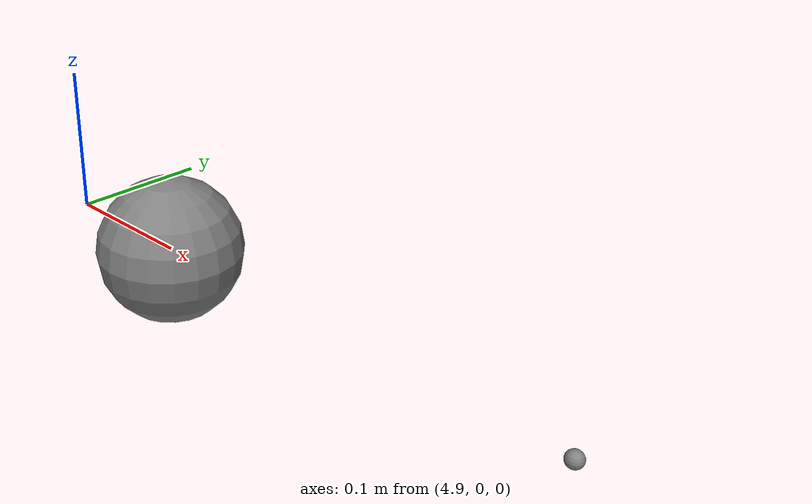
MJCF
<mujoco model="t36">
            <option gravity="0 0 0"/>
            <worldbody>
                <body name="b1" pos="5 0 0">
                    <joint type="free"/>
                    <geom type="sphere" size="0.05" mass="1"/>
                    <site name="s_obj" pos="0.3 0 0"/>
                    <site name="s_ref" pos="0 0 0"/>
                </body>
            </worldbody>
            <sensor>
                <framepos site="s_obj" reftype="site" refname="s_ref"/>
            </sensor>
        </mujoco>
